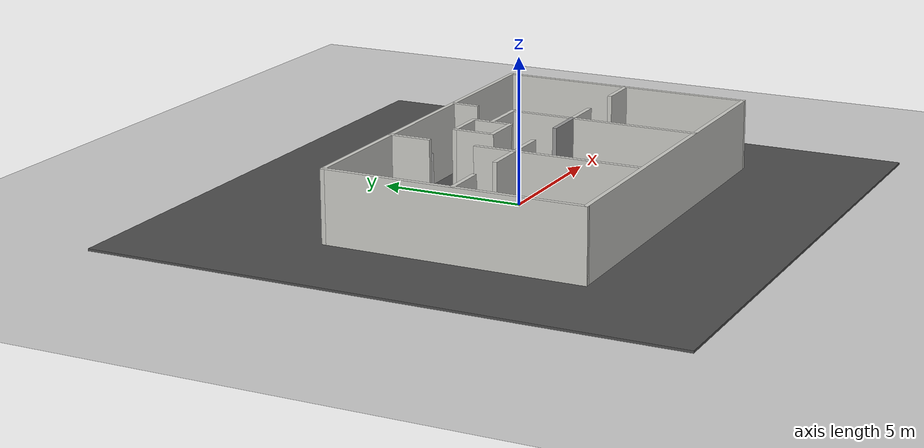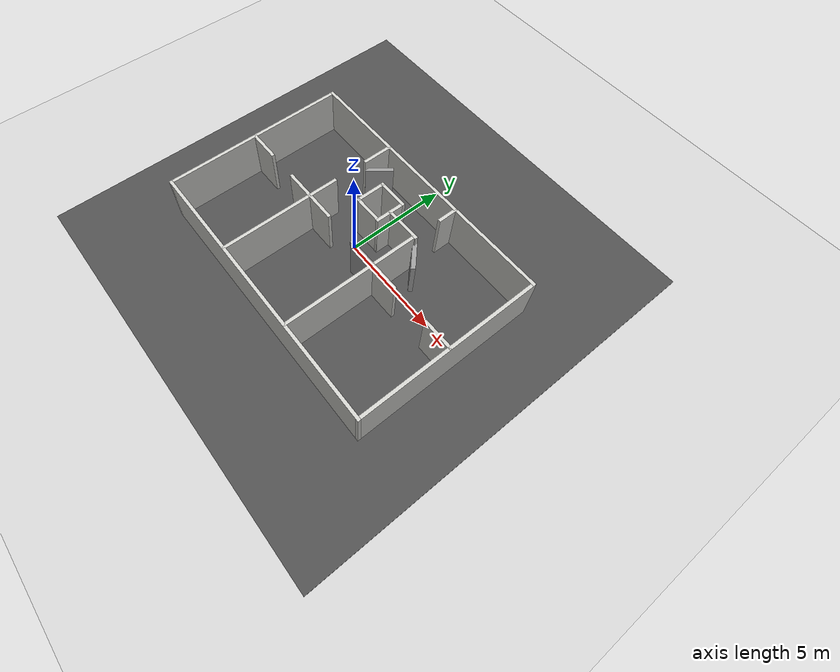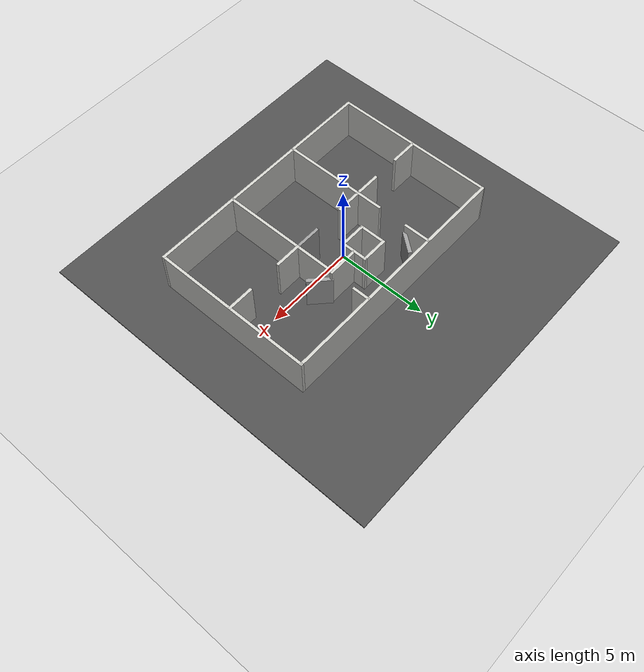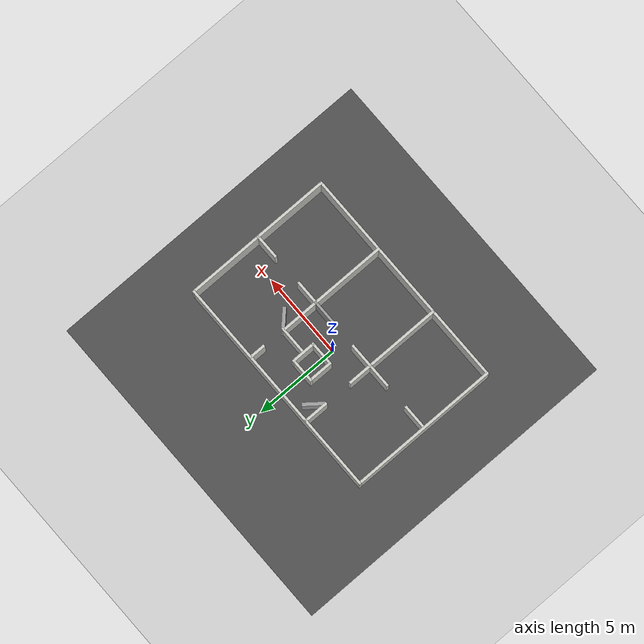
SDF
<sdf version="1.6">
 <world name="default">
  <model name="ground_plane">
   <static>1</static>
   <link name="link">
    <collision name="collision">
     <geometry><plane><normal>0 0 1</normal><size>100 100</size></plane></geometry>
     <surface><friction><ode><mu>100</mu><mu2>50</mu2></ode></friction></surface>
    </collision>
    <visual name="visual">
     <cast_shadows>0</cast_shadows>
     <geometry><plane><normal>0 0 1</normal><size>100 100</size></plane></geometry>
     <material>
      <script><uri>file://media/materials/scripts/gazebo.material</uri><name>Gazebo/Grey</name></script>
     </material>
    </visual>
   </link>
  </model>
  <gravity>0 0 -9.8</gravity>
  <magnetic_field>6e-06 2.3e-05 -4.2e-05</magnetic_field>
  <atmosphere type="adiabatic"/>
  <physics name="default_physics" default="0" type="ode">
   <max_step_size>0.001</max_step_size>
   <real_time_factor>1</real_time_factor>
   <real_time_update_rate>1000</real_time_update_rate>
  </physics>
  <scene><ambient>0.4 0.4 0.4 1</ambient><background>0.7 0.7 0.7 1</background><shadows>1</shadows></scene>
  <spherical_coordinates>
   <surface_model>EARTH_WGS84</surface_model>
   <latitude_deg>0</latitude_deg>
   <longitude_deg>0</longitude_deg>
   <elevation>0</elevation>
   <heading_deg>0</heading_deg>
  </spherical_coordinates>
  <model name="NewWorldSmall">
   <pose>0.289772 -0.789822 0 0 -0 0</pose>
   <link name="Door_0">
    <collision name="Door_0_Collision">
     <geometry><box><size>1.28617 0.2 2</size></box></geometry>
     <pose>0 0 1 0 -0 0</pose>
    </collision>
    <visual name="Door_0_Visual">
     <pose>0 0 1 0 -0 0</pose>
     <geometry><box><size>1.28617 0.2 2</size></box></geometry>
     <material>
      <script><uri>file://media/materials/scripts/gazebo.material</uri><name>Gazebo/Grey</name></script>
     </material>
    </visual>
    <pose>-1.90915 3.50294 0 0 0 -2.23713</pose>
   </link>
   <link name="Door_1">
    <collision name="Door_1_Collision">
     <geometry><box><size>1.31092 0.2 2</size></box></geometry>
     <pose>0 0 1 0 -0 0</pose>
    </collision>
    <visual name="Door_1_Visual">
     <pose>0 0 1 0 -0 0</pose>
     <geometry><box><size>1.31092 0.2 2</size></box></geometry>
     <material>
      <script><uri>file://media/materials/scripts/gazebo.material</uri><name>Gazebo/Grey</name></script>
     </material>
    </visual>
    <pose>2.52831 1.76927 0 0 0 -0.768871</pose>
   </link>
   <link name="Wall_10">
    <collision name="Wall_10_Collision">
     <geometry><box><size>13.5 0.15 2.5</size></box></geometry>
     <pose>0 0 1.25 0 -0 0</pose>
    </collision>
    <visual name="Wall_10_Visual">
     <pose>0 0 1.25 0 -0 0</pose>
     <geometry><box><size>13.5 0.15 2.5</size></box></geometry>
     <material>
      <script><uri>file://media/materials/scripts/gazebo.material</uri><name>Gazebo/CeilingTiled</name></script>
      <ambient>1 1 1 1</ambient>
     </material>
    </visual>
    <pose>-0.000178 -4.425 0 0 -0 0</pose>
   </link>
   <link name="Wall_12">
    <collision name="Wall_12_Collision">
     <geometry><box><size>9.00001 0.15 2.5</size></box></geometry>
     <pose>0 0 1.25 0 -0 0</pose>
    </collision>
    <visual name="Wall_12_Visual">
     <pose>0 0 1.25 0 -0 0</pose>
     <geometry><box><size>9.00001 0.15 2.5</size></box></geometry>
     <material>
      <script><uri>file://media/materials/scripts/gazebo.material</uri><name>Gazebo/CeilingTiled</name></script>
      <ambient>1 1 1 1</ambient>
     </material>
    </visual>
    <pose>6.675 0 0 0 0 -1.57084</pose>
   </link>
   <link name="Wall_15">
    <collision name="Wall_15_Collision">
     <geometry><box><size>4.5 0.15 2.5</size></box></geometry>
     <pose>0 0 1.25 0 -0 0</pose>
    </collision>
    <visual name="Wall_15_Visual">
     <pose>0 0 1.25 0 -0 0</pose>
     <geometry><box><size>4.5 0.15 2.5</size></box></geometry>
     <material>
      <script><uri>file://media/materials/scripts/gazebo.material</uri><name>Gazebo/CeilingTiled</name></script>
      <ambient>1 1 1 1</ambient>
     </material>
    </visual>
    <pose>-2.35319 -2.20982 0 0 -0 1.5708</pose>
   </link>
   <link name="Wall_16">
    <collision name="Wall_16_Collision">
     <geometry><box><size>1.5 0.15 2.5</size></box></geometry>
     <pose>0 0 1.25 0 -0 0</pose>
    </collision>
    <visual name="Wall_16_Visual">
     <pose>0 0 1.25 0 -0 0</pose>
     <geometry><box><size>1.5 0.15 2.5</size></box></geometry>
     <material>
      <script><uri>file://media/materials/scripts/gazebo.material</uri><name>Gazebo/CeilingTiled</name></script>
      <ambient>1 1 1 1</ambient>
     </material>
    </visual>
    <pose>-1.67819 -0.03482 0 0 -0 0</pose>
   </link>
   <link name="Wall_19">
    <collision name="Wall_19_Collision">
     <geometry><box><size>4.5 0.15 2.5</size></box></geometry>
     <pose>0 0 1.25 0 -0 0</pose>
    </collision>
    <visual name="Wall_19_Visual">
     <pose>0 0 1.25 0 -0 0</pose>
     <geometry><box><size>4.5 0.15 2.5</size></box></geometry>
     <material>
      <script><uri>file://media/materials/scripts/gazebo.material</uri><name>Gazebo/CeilingTiled</name></script>
      <ambient>1 1 1 1</ambient>
     </material>
    </visual>
    <pose>2.04163 -2.23295 0 0 -0 1.5708</pose>
   </link>
   <link name="Wall_20">
    <collision name="Wall_20_Collision">
     <geometry><box><size>1.5002 0.15 2.5</size></box></geometry>
     <pose>0 0 1.25 0 -0 0</pose>
    </collision>
    <visual name="Wall_20_Visual">
     <pose>0 0 1.25 0 -0 0</pose>
     <geometry><box><size>1.5002 0.15 2.5</size></box></geometry>
     <material>
      <script><uri>file://media/materials/scripts/gazebo.material</uri><name>Gazebo/Grey</name></script>
      <ambient>1 1 1 1</ambient>
     </material>
    </visual>
    <pose>1.36663 -0.05795 0 0 -0 3.14159</pose>
   </link>
   <link name="Wall_22">
    <collision name="Wall_22_Collision">
     <geometry><box><size>1.5 0.15 2.5</size></box></geometry>
     <pose>0 0 1.25 0 -0 0</pose>
    </collision>
    <visual name="Wall_22_Visual">
     <pose>0 0 1.25 0 -0 0</pose>
     <geometry><box><size>1.5 0.15 2.5</size></box></geometry>
     <material>
      <script><uri>file://media/materials/scripts/gazebo.material</uri><name>Gazebo/CeilingTiled</name></script>
      <ambient>1 1 1 1</ambient>
     </material>
    </visual>
    <pose>-2.35319 0.64018 0 0 -0 1.5708</pose>
   </link>
   <link name="Wall_24">
    <collision name="Wall_24_Collision">
     <geometry><box><size>1.5 0.15 2.5</size></box></geometry>
     <pose>0 0 1.25 0 -0 0</pose>
    </collision>
    <visual name="Wall_24_Visual">
     <pose>0 0 1.25 0 -0 0</pose>
     <geometry><box><size>1.5 0.15 2.5</size></box></geometry>
     <material>
      <script><uri>file://media/materials/scripts/gazebo.material</uri><name>Gazebo/CeilingTiled</name></script>
      <ambient>1 1 1 1</ambient>
     </material>
    </visual>
    <pose>-2.35319 3.72981 0 0 0 -1.5708</pose>
   </link>
   <link name="Wall_29">
    <collision name="Wall_29_Collision">
     <geometry><box><size>1.5 0.15 2.5</size></box></geometry>
     <pose>0 0 1.25 0 -0 0</pose>
    </collision>
    <visual name="Wall_29_Visual">
     <pose>0 0 1.25 0 -0 0</pose>
     <geometry><box><size>1.5 0.15 2.5</size></box></geometry>
     <material>
      <script><uri>file://media/materials/scripts/gazebo.material</uri><name>Gazebo/CeilingTiled</name></script>
      <ambient>1 1 1 1</ambient>
     </material>
    </visual>
    <pose>-0.206253 2.83193 0 0 -0 3.14159</pose>
   </link>
   <link name="Wall_30">
    <collision name="Wall_30_Collision">
     <geometry><box><size>1.5 0.15 2.5</size></box></geometry>
     <pose>0 0 1.25 0 -0 0</pose>
    </collision>
    <visual name="Wall_30_Visual">
     <pose>0 0 1.25 0 -0 0</pose>
     <geometry><box><size>1.5 0.15 2.5</size></box></geometry>
     <material>
      <script><uri>file://media/materials/scripts/gazebo.material</uri><name>Gazebo/CeilingTiled</name></script>
      <ambient>1 1 1 1</ambient>
     </material>
    </visual>
    <pose>-0.881253 2.15693 0 0 0 -1.5708</pose>
   </link>
   <link name="Wall_31">
    <collision name="Wall_31_Collision">
     <geometry><box><size>1.5 0.15 2.5</size></box></geometry>
     <pose>0 0 1.25 0 -0 0</pose>
    </collision>
    <visual name="Wall_31_Visual">
     <pose>0 0 1.25 0 -0 0</pose>
     <geometry><box><size>1.5 0.15 2.5</size></box></geometry>
     <material>
      <script><uri>file://media/materials/scripts/gazebo.material</uri><name>Gazebo/CeilingTiled</name></script>
      <ambient>1 1 1 1</ambient>
     </material>
    </visual>
    <pose>-0.206253 1.48193 0 0 -0 0</pose>
   </link>
   <link name="Wall_32">
    <collision name="Wall_32_Collision">
     <geometry><box><size>1.5 0.15 2.5</size></box></geometry>
     <pose>0 0 1.25 0 -0 0</pose>
    </collision>
    <visual name="Wall_32_Visual">
     <pose>0 0 1.25 0 -0 0</pose>
     <geometry><box><size>1.5 0.15 2.5</size></box></geometry>
     <material>
      <script><uri>file://media/materials/scripts/gazebo.material</uri><name>Gazebo/CeilingTiled</name></script>
      <ambient>1 1 1 1</ambient>
     </material>
    </visual>
    <pose>0.468747 2.15693 0 0 -0 1.5708</pose>
   </link>
   <link name="Wall_37">
    <collision name="Wall_37_Collision">
     <geometry><box><size>2.25 0.15 2.5</size></box></geometry>
     <pose>0 0 1.25 0 -0 0</pose>
    </collision>
    <visual name="Wall_37_Visual">
     <pose>0 0 1.25 0 -0 0</pose>
     <geometry><box><size>2.25 0.15 2.5</size></box></geometry>
     <material>
      <script><uri>file://media/materials/scripts/gazebo.material</uri><name>Gazebo/CeilingTiled</name></script>
      <ambient>1 1 1 1</ambient>
     </material>
    </visual>
    <pose>2.04163 0.99205 0 0 -0 1.5708</pose>
   </link>
   <link name="Wall_4">
    <collision name="Wall_4_Collision">
     <geometry><box><size>13.5 0.15 2.5</size></box></geometry>
     <pose>0 0 1.25 0 -0 0</pose>
    </collision>
    <visual name="Wall_4_Visual">
     <pose>0 0 1.25 0 -0 0</pose>
     <geometry><box><size>13.5 0.15 2.5</size></box></geometry>
     <material>
      <script><uri>file://media/materials/scripts/gazebo.material</uri><name>Gazebo/CeilingTiled</name></script>
      <ambient>1 1 1 1</ambient>
     </material>
    </visual>
    <pose>0.000178 4.425 0 0 -0 0</pose>
   </link>
   <link name="Wall_40">
    <collision name="Wall_40_Collision">
     <geometry><box><size>1 0.15 2.5</size></box></geometry>
     <pose>0 0 1.25 0 -0 0</pose>
    </collision>
    <visual name="Wall_40_Visual">
     <pose>0 0 1.25 0 -0 0</pose>
     <geometry><box><size>1 0.15 2.5</size></box></geometry>
     <material>
      <script><uri>file://media/materials/scripts/gazebo.material</uri><name>Gazebo/CeilingTiled</name></script>
      <ambient>1 1 1 1</ambient>
     </material>
    </visual>
    <pose>2.08789 3.97981 0 0 0 -1.5708</pose>
   </link>
   <link name="Wall_42">
    <collision name="Wall_42_Collision">
     <geometry><box><size>1.75 0.15 2.5</size></box></geometry>
     <pose>0 0 1.25 0 -0 0</pose>
    </collision>
    <visual name="Wall_42_Visual">
     <pose>0 0 1.25 0 -0 0</pose>
     <geometry><box><size>1.75 0.15 2.5</size></box></geometry>
     <material>
      <script><uri>file://media/materials/scripts/gazebo.material</uri><name>Gazebo/CeilingTiled</name></script>
      <ambient>1 1 1 1</ambient>
     </material>
    </visual>
    <pose>1.29188 2.16114 0 0 -0 0</pose>
   </link>
   <link name="Wall_44">
    <collision name="Wall_44_Collision">
     <geometry><box><size>1.5 0.15 2.5</size></box></geometry>
     <pose>0 0 1.25 0 -0 0</pose>
    </collision>
    <visual name="Wall_44_Visual">
     <pose>0 0 1.25 0 -0 0</pose>
     <geometry><box><size>1.5 0.15 2.5</size></box></geometry>
     <material>
      <script><uri>file://media/materials/scripts/gazebo.material</uri><name>Gazebo/CeilingTiled</name></script>
      <ambient>1 1 1 1</ambient>
     </material>
    </visual>
    <pose>-3.02819 -0.03482 0 0 -0 3.14159</pose>
   </link>
   <link name="Wall_46">
    <collision name="Wall_46_Collision">
     <geometry><box><size>1.5 0.15 2.5</size></box></geometry>
     <pose>0 0 1.25 0 -0 0</pose>
    </collision>
    <visual name="Wall_46_Visual">
     <pose>0 0 1.25 0 -0 0</pose>
     <geometry><box><size>1.5 0.15 2.5</size></box></geometry>
     <material>
      <script><uri>file://media/materials/scripts/gazebo.material</uri><name>Gazebo/CeilingTiled</name></script>
      <ambient>1 1 1 1</ambient>
     </material>
    </visual>
    <pose>-5.93422 -0.036266 0 0 -0 0</pose>
   </link>
   <link name="Wall_48">
    <collision name="Wall_48_Collision">
     <geometry><box><size>1.5 0.15 2.5</size></box></geometry>
     <pose>0 0 1.25 0 -0 0</pose>
    </collision>
    <visual name="Wall_48_Visual">
     <pose>0 0 1.25 0 -0 0</pose>
     <geometry><box><size>1.5 0.15 2.5</size></box></geometry>
     <material>
      <script><uri>file://media/materials/scripts/gazebo.material</uri><name>Gazebo/CeilingTiled</name></script>
      <ambient>1 1 1 1</ambient>
     </material>
    </visual>
    <pose>2.71663 -0.05795 0 0 -0 0</pose>
   </link>
   <link name="Wall_50">
    <collision name="Wall_50_Collision">
     <geometry><box><size>1.5 0.15 2.5</size></box></geometry>
     <pose>0 0 1.25 0 -0 0</pose>
    </collision>
    <visual name="Wall_50_Visual">
     <pose>0 0 1.25 0 -0 0</pose>
     <geometry><box><size>1.5 0.15 2.5</size></box></geometry>
     <material>
      <script><uri>file://media/materials/scripts/gazebo.material</uri><name>Gazebo/CeilingTiled</name></script>
      <ambient>1 1 1 1</ambient>
     </material>
    </visual>
    <pose>5.99275 -0.036266 0 0 -0 3.14159</pose>
   </link>
   <link name="Wall_8">
    <collision name="Wall_8_Collision">
     <geometry><box><size>9 0.15 2.5</size></box></geometry>
     <pose>0 0 1.25 0 -0 0</pose>
    </collision>
    <visual name="Wall_8_Visual">
     <pose>0 0 1.25 0 -0 0</pose>
     <geometry><box><size>9 0.15 2.5</size></box></geometry>
     <material>
      <script><uri>file://media/materials/scripts/gazebo.material</uri><name>Gazebo/CeilingTiled</name></script>
      <ambient>1 1 1 1</ambient>
     </material>
    </visual>
    <pose>-6.675 0 0 0 0 -1.57084</pose>
   </link>
   <static>1</static>
  </model>
  <model name="asphalt_plane">
   <static>1</static>
   <link name="link">
    <collision name="collision"><geometry><box><size>20 20 0.1</size></box></geometry></collision>
    <visual name="visual">
     <cast_shadows>0</cast_shadows>
     <geometry><box><size>20 20 0.1</size></box></geometry>
     <material>
      <script>
       <uri>model://asphalt_plane/materials/scripts</uri>
       <uri>model://asphalt_plane/materials/textures</uri>
       <name>vrc/asphalt</name>
      </script>
     </material>
    </visual>
   </link>
   <pose>0.07469 0.015038 0 0 -0 0</pose>
  </model>
  <light name="user_directional_light_0" type="directional">
   <pose>1.32987 -2.7094 1 0 -0 0</pose>
   <diffuse>0.5 0.5 0.5 1</diffuse>
   <specular>0.1 0.1 0.1 1</specular>
   <direction>0.1 0.1 -0.9</direction>
   <attenuation>
    <range>20</range>
    <constant>0.5</constant>
    <linear>0.01</linear>
    <quadratic>0.001</quadratic>
   </attenuation>
  </light>
  <light name="user_directional_light_1" type="directional">
   <pose>-3.40732 1.66308 1 0 -0 0</pose>
   <diffuse>0.5 0.5 0.5 1</diffuse>
   <specular>0.1 0.1 0.1 1</specular>
   <direction>0.1 0.1 -0.9</direction>
   <attenuation>
    <range>20</range>
    <constant>0.5</constant>
    <linear>0.01</linear>
    <quadratic>0.001</quadratic>
   </attenuation>
  </light>
  <light name="user_spot_light_0" type="spot">
   <pose>6.0751 -3.9924 1 0 -0 0</pose>
   <diffuse>0.5 0.5 0.5 1</diffuse>
   <specular>0.1 0.1 0.1 1</specular>
   <direction>0 0 -1</direction>
   <attenuation>
    <range>20</range>
    <constant>0.5</constant>
    <linear>0.01</linear>
    <quadratic>0.001</quadratic>
   </attenuation>
   <cast_shadows>0</cast_shadows>
   <spot><inner_angle>0.6</inner_angle><outer_angle>1</outer_angle><falloff>1</falloff></spot>
  </light>
 </world>
</sdf>
